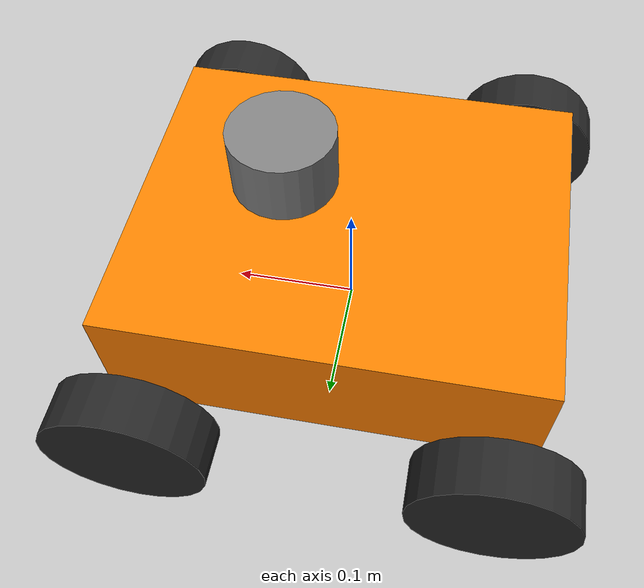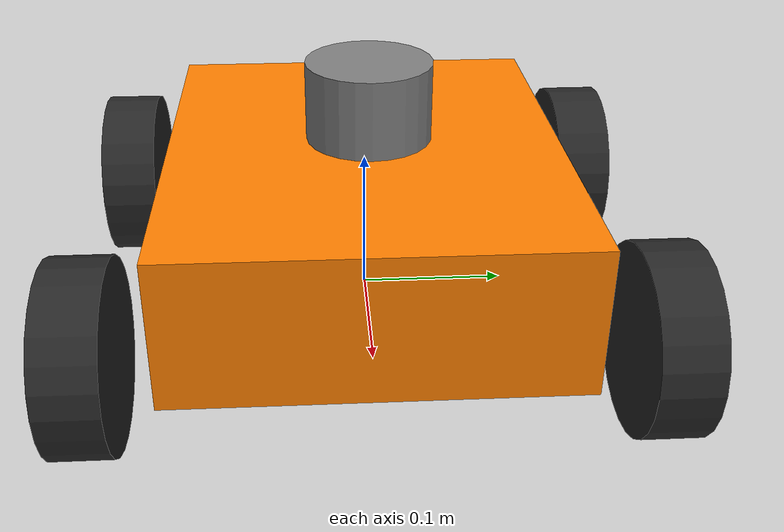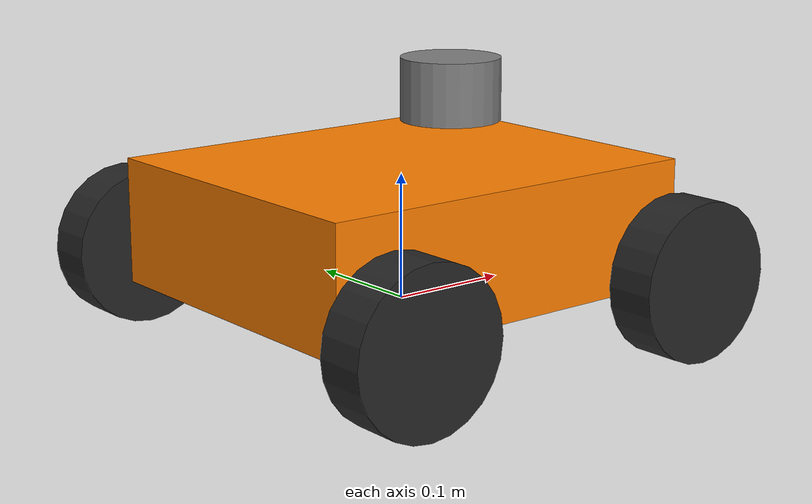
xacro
<?xml version="1.0"?>
<robot xmlns:xacro="http://www.ros.org/wiki/xacro" name="leo_rover">

  <!-- Properties -->
  <xacro:property name="wheel_radius" value="0.0625"/>
  <xacro:property name="wheel_width" value="0.04"/>
  <xacro:property name="wheel_separation" value="0.358"/>
  <xacro:property name="wheel_base" value="0.268"/>
  <xacro:property name="wheel_mass" value="0.283"/>

  <xacro:property name="body_mass" value="2.5"/>
  <xacro:property name="body_length" value="0.330"/>
  <xacro:property name="body_width" value="0.270"/>
  <xacro:property name="body_height" value="0.100"/>

  <!-- Materials -->
  <material name="black">
    <color rgba="0.15 0.15 0.15 1.0"/>
  </material>

  <material name="orange">
    <color rgba="1.0 0.5 0.0 1.0"/>
  </material>

  <material name="grey">
    <color rgba="0.5 0.5 0.5 1.0"/>
  </material>

  <!-- Base link -->
  <link name="base_link">
    <visual>
      <origin xyz="0 0 0" rpy="0 0 0"/>
      <geometry>
        <box size="${body_length} ${body_width} ${body_height}"/>
      </geometry>
      <material name="orange"/>
    </visual>
    <collision>
      <origin xyz="0 0 0" rpy="0 0 0"/>
      <geometry>
        <box size="${body_length} ${body_width} ${body_height}"/>
      </geometry>
    </collision>
    <inertial>
      <mass value="${body_mass}"/>
      <origin xyz="0 0 0" rpy="0 0 0"/>
      <inertia ixx="0.025" ixy="0" ixz="0" iyy="0.03" iyz="0" izz="0.045"/>
    </inertial>
  </link>

  <!-- Base footprint -->
  <link name="base_footprint"/>

  <joint name="base_joint" type="fixed">
    <parent link="base_footprint"/>
    <child link="base_link"/>
    <origin xyz="0 0 ${wheel_radius}" rpy="0 0 0"/>
  </joint>

  <!-- Wheel macro -->
  <xacro:macro name="wheel" params="prefix reflect_lr reflect_fb">
    <link name="${prefix}_wheel">
      <visual>
        <origin xyz="0 0 0" rpy="${pi/2} 0 0"/>
        <geometry>
          <cylinder radius="${wheel_radius}" length="${wheel_width}"/>
        </geometry>
        <material name="black"/>
      </visual>
      <collision>
        <origin xyz="0 0 0" rpy="${pi/2} 0 0"/>
        <geometry>
          <cylinder radius="${wheel_radius}" length="${wheel_width}"/>
        </geometry>
      </collision>
      <inertial>
        <mass value="${wheel_mass}"/>
        <origin xyz="0 0 0" rpy="0 0 0"/>
        <inertia ixx="0.0006" ixy="0" ixz="0" iyy="0.0006" iyz="0" izz="0.0011"/>
      </inertial>
    </link>

    <joint name="${prefix}_wheel_joint" type="continuous">
      <parent link="base_link"/>
      <child link="${prefix}_wheel"/>
      <origin xyz="${reflect_fb*wheel_base/2} ${reflect_lr*wheel_separation/2} ${-wheel_radius/2}" rpy="0 0 0"/>
      <axis xyz="0 1 0"/>
    </joint>
  </xacro:macro>

  <!-- Instantiate wheels -->
  <xacro:wheel prefix="front_left" reflect_lr="1" reflect_fb="1"/>
  <xacro:wheel prefix="front_right" reflect_lr="-1" reflect_fb="1"/>
  <xacro:wheel prefix="rear_left" reflect_lr="1" reflect_fb="-1"/>
  <xacro:wheel prefix="rear_right" reflect_lr="-1" reflect_fb="-1"/>

  <!-- LiDAR sensor -->
  <link name="lidar_link">
    <visual>
      <origin xyz="0 0 0" rpy="0 0 0"/>
      <geometry>
        <cylinder radius="0.04" length="0.05"/>
      </geometry>
      <material name="grey"/>
    </visual>
    <collision>
      <origin xyz="0 0 0" rpy="0 0 0"/>
      <geometry>
        <cylinder radius="0.04" length="0.05"/>
      </geometry>
    </collision>
    <inertial>
      <mass value="0.125"/>
      <origin xyz="0 0 0" rpy="0 0 0"/>
      <inertia ixx="0.0001" ixy="0" ixz="0" iyy="0.0001" iyz="0" izz="0.0001"/>
    </inertial>
  </link>

  <joint name="lidar_joint" type="fixed">
    <parent link="base_link"/>
    <child link="lidar_link"/>
    <origin xyz="0.05 0 0.10" rpy="0 0 0"/>
  </joint>

  <!-- Gazebo ros2_control -->
  <gazebo>
    <plugin filename="gz-sim-diff-drive-system" name="gz::sim::systems::DiffDrive">
      <left_joint>front_left_wheel_joint</left_joint>
      <left_joint>rear_left_wheel_joint</left_joint>
      <right_joint>front_right_wheel_joint</right_joint>
      <right_joint>rear_right_wheel_joint</right_joint>
      <wheel_separation>${wheel_separation}</wheel_separation>
      <wheel_radius>${wheel_radius}</wheel_radius>
      <odom_publish_frequency>50</odom_publish_frequency>
      <topic>/cmd_vel</topic>
      <odom_topic>/odom</odom_topic>
      <frame_id>odom</frame_id>
      <child_frame_id>base_footprint</child_frame_id>
    </plugin>
  </gazebo>

  <!-- Gazebo LiDAR sensor -->
  <gazebo reference="lidar_link">
    <sensor name="lidar" type="gpu_lidar">
      <topic>/scan</topic>
      <update_rate>10</update_rate>
      <lidar>
        <scan>
          <horizontal>
            <samples>360</samples>
            <resolution>1</resolution>
            <min_angle>-3.14159</min_angle>
            <max_angle>3.14159</max_angle>
          </horizontal>
          <vertical>
            <samples>1</samples>
            <resolution>1</resolution>
            <min_angle>0</min_angle>
            <max_angle>0</max_angle>
          </vertical>
        </scan>
        <range>
          <min>0.12</min>
          <max>10.0</max>
          <resolution>0.01</resolution>
        </range>
        <noise>
          <type>gaussian</type>
          <mean>0.0</mean>
          <stddev>0.01</stddev>
        </noise>
      </lidar>
      <always_on>1</always_on>
      <visualize>true</visualize>
    </sensor>
  </gazebo>

  <!-- Gazebo properties -->
  <gazebo reference="base_link">
    <material>Gazebo/Orange</material>
  </gazebo>

  <gazebo reference="front_left_wheel">
    <material>Gazebo/Black</material>
    <mu1>1.0</mu1>
    <mu2>1.0</mu2>
  </gazebo>

  <gazebo reference="front_right_wheel">
    <material>Gazebo/Black</material>
    <mu1>1.0</mu1>
    <mu2>1.0</mu2>
  </gazebo>

  <gazebo reference="rear_left_wheel">
    <material>Gazebo/Black</material>
    <mu1>1.0</mu1>
    <mu2>1.0</mu2>
  </gazebo>

  <gazebo reference="rear_right_wheel">
    <material>Gazebo/Black</material>
    <mu1>1.0</mu1>
    <mu2>1.0</mu2>
  </gazebo>

</robot>
